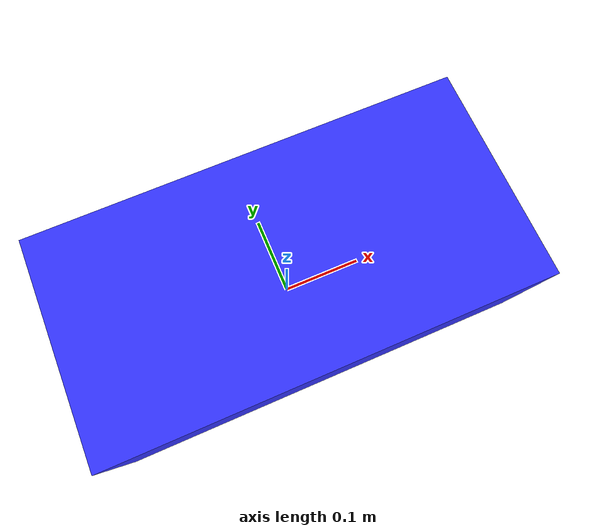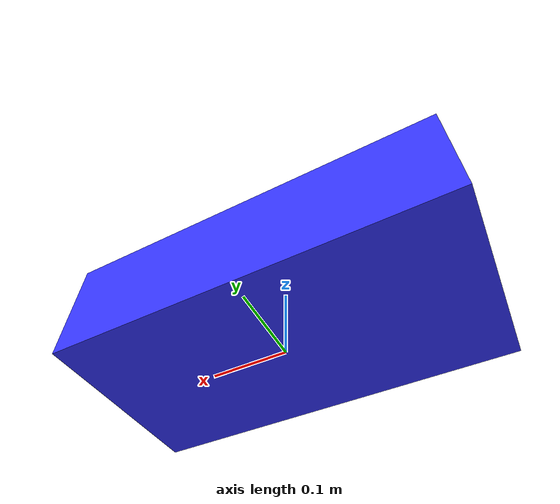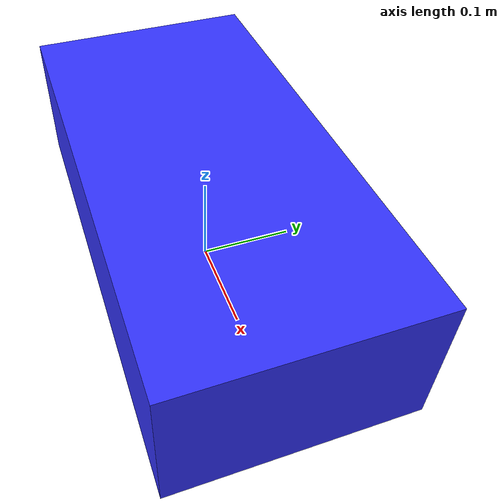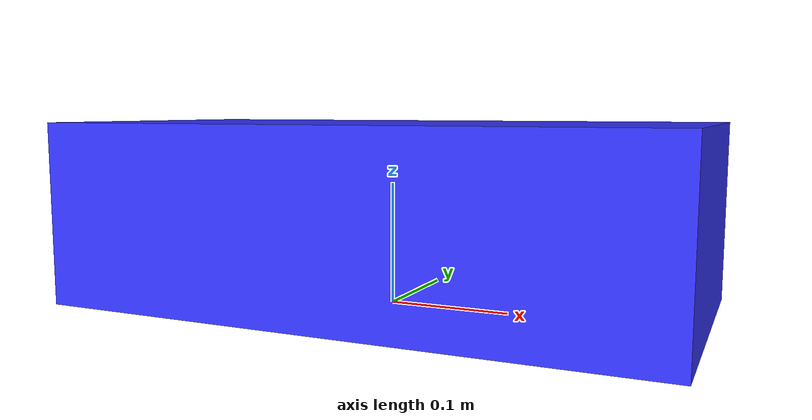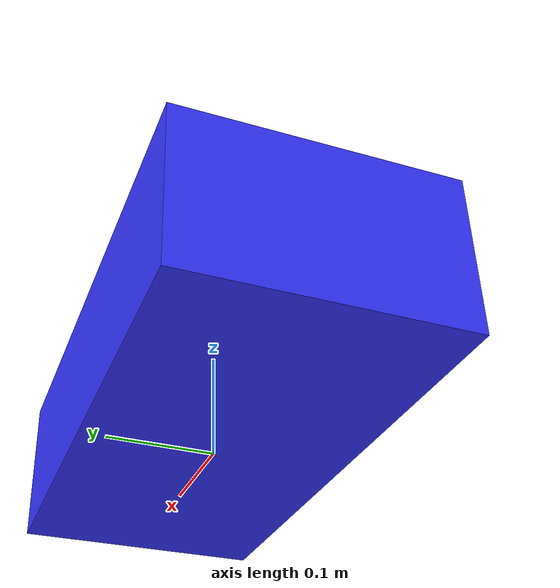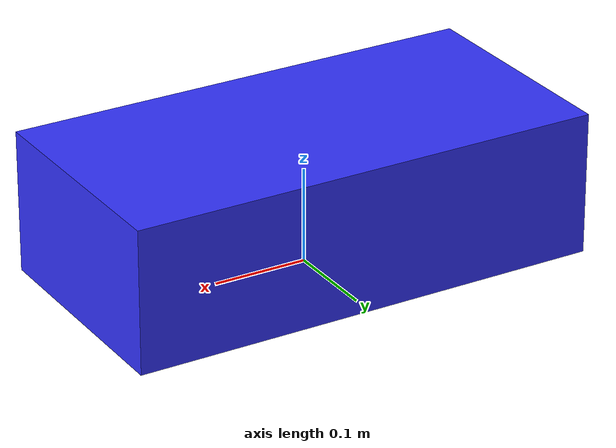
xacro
<?xml version="1.0"?>
<robot xmlns:xacro="http://www.ros.org/wiki/xacro" name="camera_robot">

    <material name="white">
        <color rgba="1 1 1 1"/>
    </material>

    <material name="orange">
        <color rgba="1 0.3 0.1 1"/>
    </material>

    <material name="blue">
        <color rgba="0.2 0.2 1 1"/>
    </material>

    <gazebo reference="base_link">
        <material>Gazebo/Green</material>
    </gazebo>

    <gazebo reference="slider_link">
        <material>Gazebo/Blue</material>
    </gazebo>

    <xacro:macro name="inertial_sphere" params="mass radius *origin">
        <inertial>
            <xacro:insert_block name="origin"/>
            <mass value="${mass}" />
            <inertia ixx="${(2/5) * mass * (radius*radius)}" ixy="0.0" ixz="0.0"
                    iyy="${(2/5) * mass * (radius*radius)}" iyz="0.0"
                    izz="${(2/5) * mass * (radius*radius)}" />
        </inertial>
    </xacro:macro>

    <xacro:macro name="inertial_box" params="mass x y z *origin">
        <inertial>
            <xacro:insert_block name="origin"/>
            <mass value="${mass}" />
            <inertia ixx="${(1/12) * mass * (y*y+z*z)}" ixy="0.0" ixz="0.0"
                    iyy="${(1/12) * mass * (x*x+z*z)}" iyz="0.0"
                    izz="${(1/12) * mass * (x*x+y*y)}" />
        </inertial>
    </xacro:macro>

    <xacro:macro name="inertial_cylinder" params="mass length radius *origin">
        <inertial>
            <xacro:insert_block name="origin"/>
            <mass value="${mass}" />
            <inertia ixx="${(1/12) * mass * (3*radius*radius + length*length)}" ixy="0.0" ixz="0.0"
                    iyy="${(1/12) * mass * (3*radius*radius + length*length)}" iyz="0.0"
                    izz="${(1/2) * mass * (radius*radius)}" />
        </inertial>
    </xacro:macro>

    <link name="base_link">

    </link>

    <joint name="base_to_slider_joint" type="fixed">
        <origin xyz="0 0 0" rpy="0 0 0"/>
        <parent link="base_link"/>
        <child link="slider_link"/>
    </joint>

    <link name="slider_link">
        <visual>
            <origin xyz="0 0 0.075" rpy="0 0 0"/>
            <geometry>
                <box size="0.5 0.25 0.15" />
            </geometry>
            <material name="blue" />
        </visual>
        <collision>
            <origin xyz="0 0 0.075" rpy="0 0 0"/>
            <geometry>
                <box size="0.5 0.25 0.15" />
            </geometry>
        </collision>
        <xacro:inertial_box mass="0.5" x="0.5" y="0.25" z="0.15">
            <origin xyz="0 0 0" rpy="0 0 0"/>
        </xacro:inertial_box>
    </link>

    <gazebo>
        <plugin name="gazebo_ros_link_pose_publisher"
            filename="libgazebo_ros_link_pose_publisher.so">
        </plugin>
    </gazebo>

    <!-- camera -->
    <gazebo reference="slider_link">
        <sensor type="camera" name="camera1">
            <update_rate>30.0</update_rate>
            <visualize>true</visualize>
            <camera name="head">
                <horizontal_fov>1.3962634</horizontal_fov>
                <image>
                    <width>800</width>
                    <height>800</height>
                    <format>R8G8B8</format>
                </image>
                <clip>
                    <near>0.02</near>
                    <far>300</far>
                </clip>
                <noise>
                    <type>gaussian</type>

                    <mean>0.0</mean>
                    <stddev>0.007</stddev>
                </noise>
            </camera>
            <plugin name="camera_controller" filename="libgazebo_ros_camera.so">
                <alwaysOn>true</alwaysOn>
                <updateRate>0.0</updateRate>
                <cameraName>vslam/camera1</cameraName>
                <imageTopicName>image_raw</imageTopicName>
                <cameraInfoTopicName>camera_info</cameraInfoTopicName>
                <frameName>camera_link</frameName>
                <hackBaseline>0.07</hackBaseline>
                <distortionK1>0.0</distortionK1>
                <distortionK2>0.0</distortionK2>
                <distortionK3>0.0</distortionK3>
                <distortionT1>0.0</distortionT1>
                <distortionT2>0.0</distortionT2>
            </plugin>
        </sensor>
    </gazebo>

</robot>
